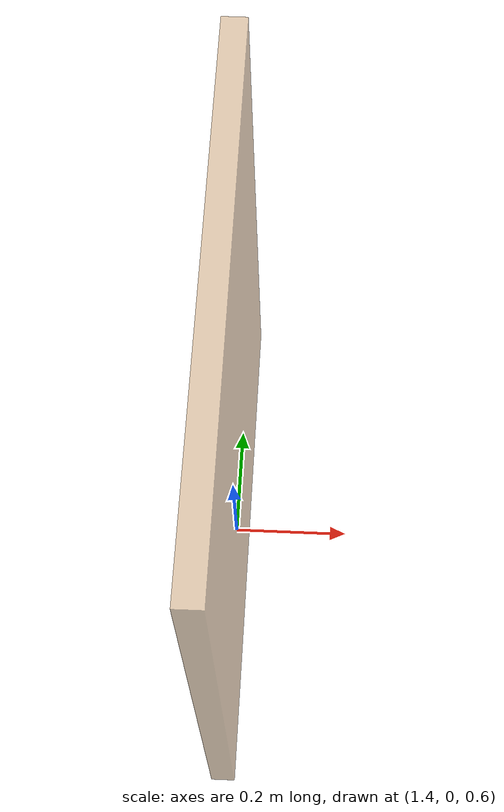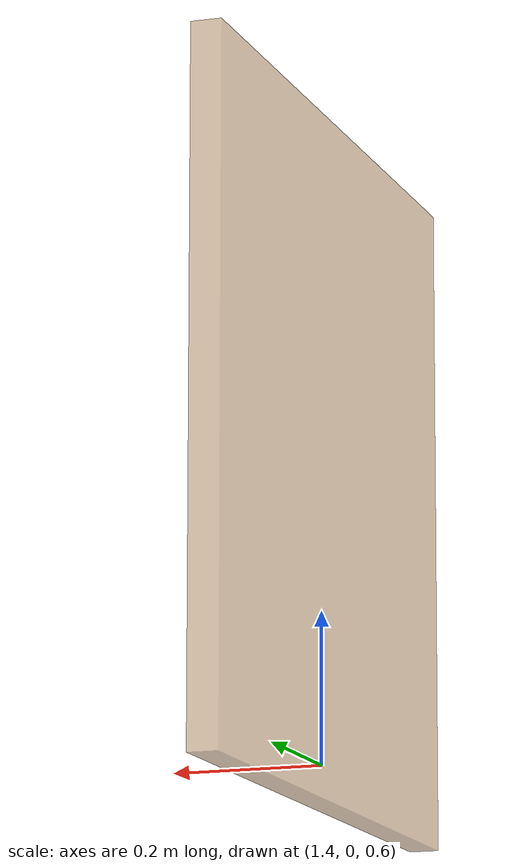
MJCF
<mujoco model="palm">
  <worldbody>
    <body name="hand_palm_mount" pos="1.4 0 1.0" quat="1 0 0 0">
      <joint name="hand_palm_slide_x" type="slide" axis="1 0 0" limited="true" range="-100.0 100.0" damping="80" />
      <joint name="hand_palm_slide_y" type="slide" axis="0 1 0" limited="true" range="-100.0 100.0" damping="80" />
      <joint name="hand_palm_slide_z" type="slide" axis="0 0 1" limited="true" range="-100.0 100.0" damping="80" />
      <inertial pos="0 0 0" mass="1e-9" diaginertia="1e-12 1e-12 1e-12" />
      <body name="hand_palm_yaw_frame">
        <joint name="hand_palm_yaw" type="hinge" axis="0 0 1" limited="true" range="-3.14159265359 3.14159265359" damping="20" />
        <inertial pos="0 0 0" mass="1e-9" diaginertia="1e-12 1e-12 1e-12" />
        <body name="hand_palm_pitch_frame">
          <joint name="hand_palm_pitch" type="hinge" axis="0 1 0" limited="true" range="-1.57079632679 1.57079632679" damping="20" />
          <inertial pos="0 0 0" mass="1e-9" diaginertia="1e-12 1e-12 1e-12" />
          <body name="hand_palm" pos="0 0 0">
            <joint name="hand_palm_roll" type="hinge" axis="1 0 0" limited="true" range="-1.57079632679 1.57079632679" damping="20" />
            <inertial pos="0 0 0" mass="5.0" diaginertia="0.675 0.338167 0.338167" />
            <geom
              name="hand_palm_vis"
              type="box"
              size="0.02 0.45 0.45"
              mass="0"
              rgba="0.85 0.72 0.58 0.7"
              contype="0"
              conaffinity="0"/>
            <geom
              name="hand_palm_col"
              type="box"
              size="0.02 0.45 0.45"
              mass="0"
              rgba="1 0 0 0.25"
              contype="1"
              conaffinity="1"
              condim="6"
              friction="1.2 0.03 0.01"
              solref="-800 -80"
              solimp="0.9 0.96 0.002"
              margin="0.005"
              group="5"/>
          </body>
        </body>
      </body>
    </body>
  </worldbody>

  <actuator>
    <position name="hand_palm_slide_x_pos" joint="hand_palm_slide_x" kp="3000" kv="200" ctrlrange="-100.0 100.0" />
    <position name="hand_palm_slide_y_pos" joint="hand_palm_slide_y" kp="3000" kv="200" ctrlrange="-100.0 100.0" />
    <position name="hand_palm_slide_z_pos" joint="hand_palm_slide_z" kp="3000" kv="200" ctrlrange="-100.0 100.0" />
    <position name="hand_palm_yaw_pos" joint="hand_palm_yaw" kp="800" kv="60" ctrlrange="-3.14159265359 3.14159265359" />
    <position name="hand_palm_pitch_pos" joint="hand_palm_pitch" kp="800" kv="60" ctrlrange="-1.57079632679 1.57079632679" />
    <position name="hand_palm_roll_pos" joint="hand_palm_roll" kp="800" kv="60" ctrlrange="-1.57079632679 1.57079632679" />
  </actuator>
</mujoco>
